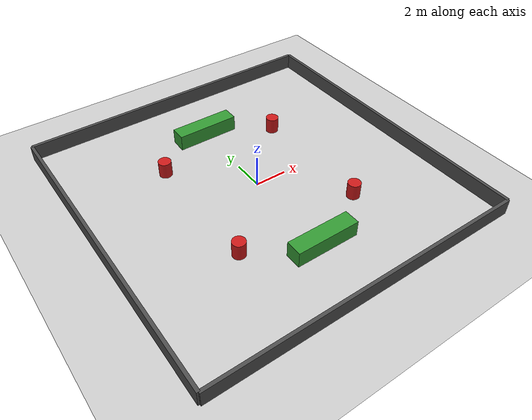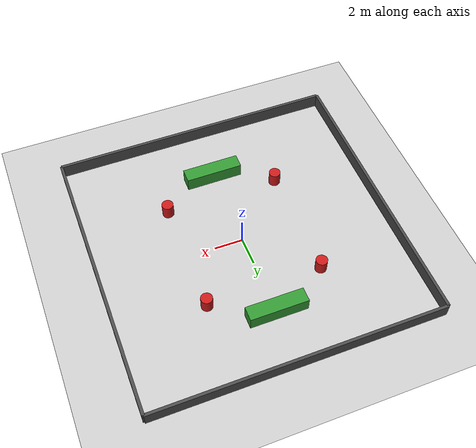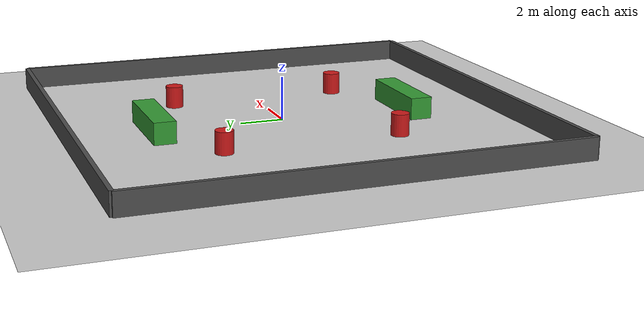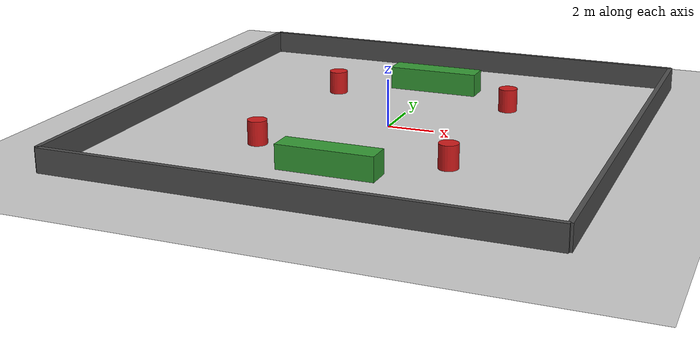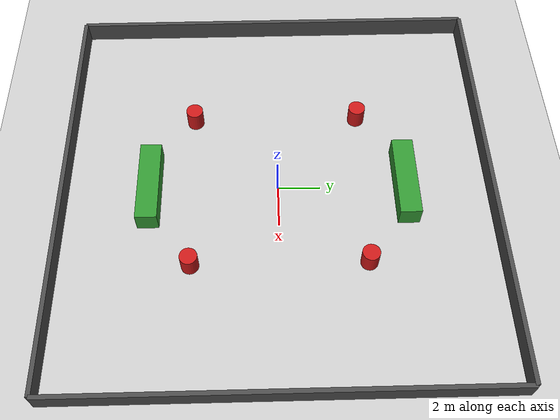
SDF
<?xml version="1.0" ?>
<sdf version="1.10">
  <world name="polman_workshop">
    <physics name="1ms" type="ignored">
      <max_step_size>0.001</max_step_size>
      <real_time_factor>1</real_time_factor>
      <real_time_update_rate>1000</real_time_update_rate>
    </physics>
    <plugin name="gz::sim::systems::Physics" filename="gz-sim-physics-system"/>
    <plugin name="gz::sim::systems::UserCommands" filename="gz-sim-user-commands-system"/>
    <plugin name="gz::sim::systems::SceneBroadcaster" filename="gz-sim-scene-broadcaster-system"/>
    <plugin name="gz::sim::systems::Imu" filename="gz-sim-imu-system"/>
    <plugin name="gz::sim::systems::Sensors" filename="gz-sim-sensors-system">
      <render_engine>ogre2</render_engine>
    </plugin>
    <gravity>0 0 -9.8</gravity>
    <magnetic_field>6e-06 2.3e-05 -4.2e-05</magnetic_field>
    <atmosphere type="adiabatic"/>

    <light name="sun" type="directional">
      <cast_shadows>true</cast_shadows>
      <pose>0 0 10 0 0 0</pose>
      <diffuse>0.8 0.8 0.8 1</diffuse>
      <direction>-0.5 0.1 -0.9</direction>
    </light>

    <model name="ground_plane">
      <static>true</static>
      <link name="link">
        <collision name="collision"><geometry><plane><normal>0 0 1</normal><size>100 100</size></plane></geometry></collision>
        <visual name="visual">
          <geometry><plane><normal>0 0 1</normal><size>100 100</size></plane></geometry>
          <material><ambient>0.8 0.8 0.8 1</ambient><diffuse>0.8 0.8 0.8 1</diffuse></material>
        </visual>
      </link>
    </model>

    <model name="wall_north">
      <pose>0 10 0.5 0 0 0</pose>
      <static>true</static>
      <link name="link">
        <collision name="collision"><geometry><box><size>20 0.2 1</size></box></geometry></collision>
        <visual name="visual"><geometry><box><size>20 0.2 1</size></box></geometry><material><ambient>0.3 0.3 0.3 1</ambient></material></visual>
      </link>
    </model>
    <model name="wall_south">
      <pose>0 -10 0.5 0 0 0</pose>
      <static>true</static>
      <link name="link">
        <collision name="collision"><geometry><box><size>20 0.2 1</size></box></geometry></collision>
        <visual name="visual"><geometry><box><size>20 0.2 1</size></box></geometry><material><ambient>0.3 0.3 0.3 1</ambient></material></visual>
      </link>
    </model>
    <model name="wall_east">
      <pose>10 0 0.5 0 0 0</pose>
      <static>true</static>
      <link name="link">
        <collision name="collision"><geometry><box><size>0.2 20 1</size></box></geometry></collision>
        <visual name="visual"><geometry><box><size>0.2 20 1</size></box></geometry><material><ambient>0.3 0.3 0.3 1</ambient></material></visual>
      </link>
    </model>
    <model name="wall_west">
      <pose>-10 0 0.5 0 0 0</pose>
      <static>true</static>
      <link name="link">
        <collision name="collision"><geometry><box><size>0.2 20 1</size></box></geometry></collision>
        <visual name="visual"><geometry><box><size>0.2 20 1</size></box></geometry><material><ambient>0.3 0.3 0.3 1</ambient></material></visual>
      </link>
    </model>

    <model name="pillar_1">
      <pose>4 4 0.5 0 0 0</pose>
      <static>true</static>
      <link name="link">
        <collision name="collision"><geometry><cylinder><radius>0.4</radius><length>1</length></cylinder></geometry></collision>
        <visual name="visual"><geometry><cylinder><radius>0.4</radius><length>1</length></cylinder></geometry><material><ambient>0.8 0.1 0.1 1</ambient></material></visual>
      </link>
    </model>
    <model name="pillar_2">
      <pose>-4 4 0.5 0 0 0</pose>
      <static>true</static>
      <link name="link">
        <collision name="collision"><geometry><cylinder><radius>0.4</radius><length>1</length></cylinder></geometry></collision>
        <visual name="visual"><geometry><cylinder><radius>0.4</radius><length>1</length></cylinder></geometry><material><ambient>0.8 0.1 0.1 1</ambient></material></visual>
      </link>
    </model>
    <model name="pillar_3">
      <pose>4 -4 0.5 0 0 0</pose>
      <static>true</static>
      <link name="link">
        <collision name="collision"><geometry><cylinder><radius>0.4</radius><length>1</length></cylinder></geometry></collision>
        <visual name="visual"><geometry><cylinder><radius>0.4</radius><length>1</length></cylinder></geometry><material><ambient>0.8 0.1 0.1 1</ambient></material></visual>
      </link>
    </model>
    <model name="pillar_4">
      <pose>-4 -4 0.5 0 0 0</pose>
      <static>true</static>
      <link name="link">
        <collision name="collision"><geometry><cylinder><radius>0.4</radius><length>1</length></cylinder></geometry></collision>
        <visual name="visual"><geometry><cylinder><radius>0.4</radius><length>1</length></cylinder></geometry><material><ambient>0.8 0.1 0.1 1</ambient></material></visual>
      </link>
    </model>

    <model name="box_1">
      <pose>0 6 0.5 0 0 0</pose>
      <static>true</static>
      <link name="link">
        <collision name="collision"><geometry><box><size>4 1 1</size></box></geometry></collision>
        <visual name="visual"><geometry><box><size>4 1 1</size></box></geometry><material><ambient>0.2 0.6 0.2 1</ambient></material></visual>
      </link>
    </model>
    <model name="box_2">
      <pose>0 -6 0.5 0 0 0</pose>
      <static>true</static>
      <link name="link">
        <collision name="collision"><geometry><box><size>4 1 1</size></box></geometry></collision>
        <visual name="visual"><geometry><box><size>4 1 1</size></box></geometry><material><ambient>0.2 0.6 0.2 1</ambient></material></visual>
      </link>
    </model>
  </world>
</sdf>
